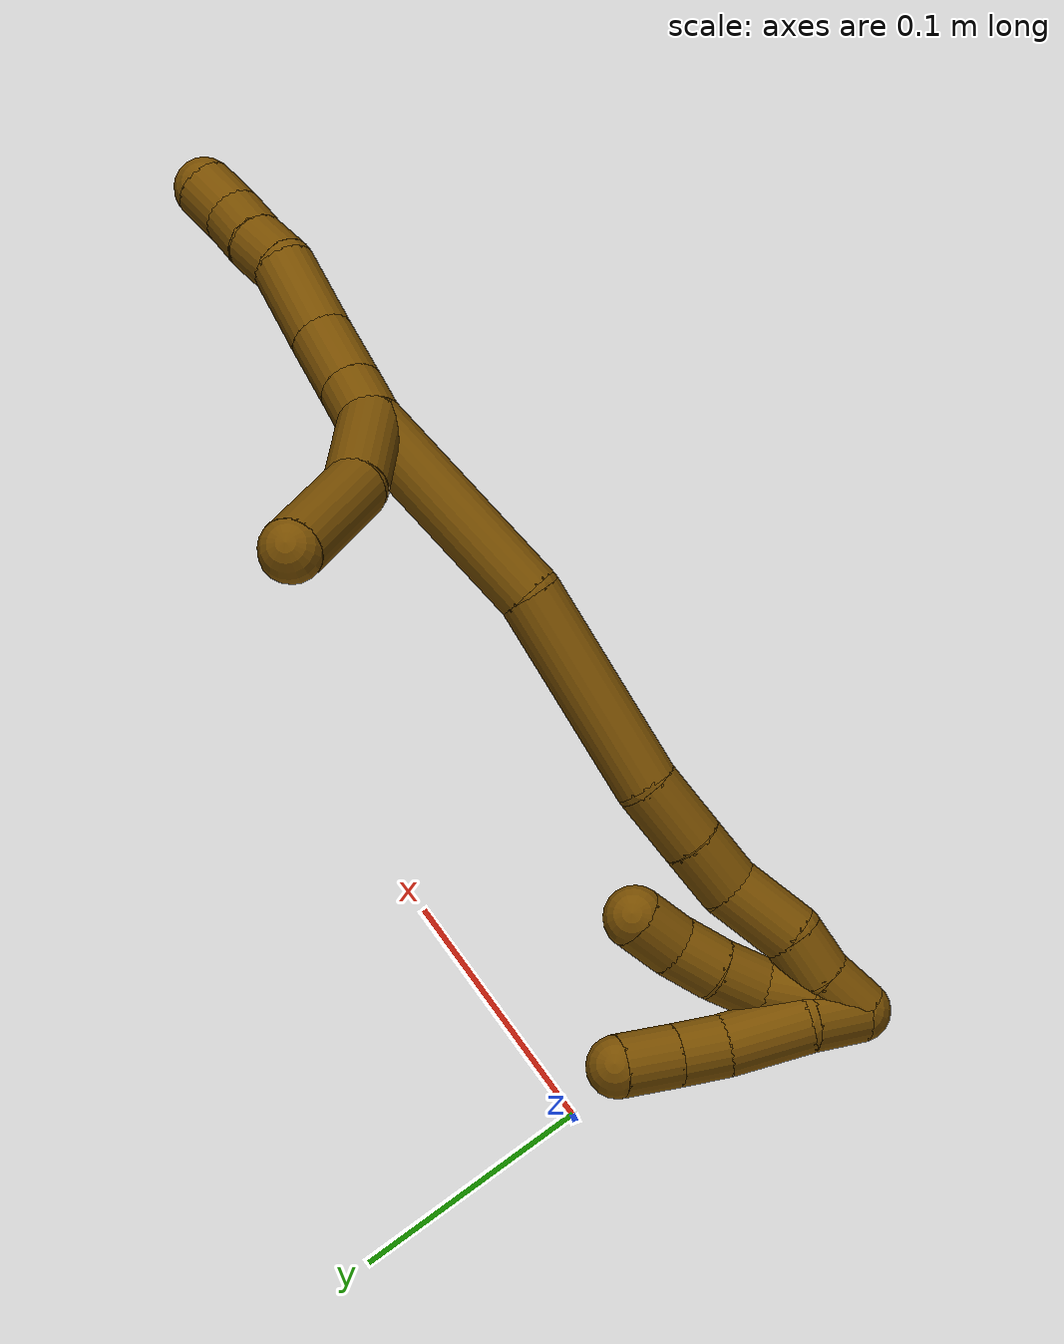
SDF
<sdf version="1.7">
 <world name="default">
  <model name="12">
   <static>0</static>
   <link name="12">
    <collision name="collision-cylinder-e_1_2_8">
     <pose>0.007874 0.004586 -0.005192 -2.41807 0.849276 -1.74787</pose>
     <geometry><cylinder><radius>0.0125</radius><length>0.020975</length></cylinder></geometry>
     <surface>
      <friction><ode><mu>1.16</mu><mu2>1.16</mu2><slip1>0</slip1><slip2>0</slip2></ode></friction>
      <contact><ode><kp>1e+06</kp><kd>1</kd><max_vel>0</max_vel><min_depth>0.001</min_depth></ode></contact>
     </surface>
    </collision>
    <visual name="visual-cylinder-e_1_2_8">
     <pose>0.007874 0.004586 -0.005192 -2.41807 0.849276 -1.74787</pose>
     <geometry><cylinder><radius>0.0125</radius><length>0.020975</length></cylinder></geometry>
     <material><ambient>0.466667 0.301961 0 1</ambient></material>
    </visual>
    <collision name="collision-cylinder-e_2_8_9">
     <pose>0.027691 0.016237 -0.016838 -2.31107 0.895294 -1.65599</pose>
     <geometry><cylinder><radius>0.0125</radius><length>0.030606</length></cylinder></geometry>
     <surface>
      <friction><ode><mu>1.16</mu><mu2>1.16</mu2><slip1>0</slip1><slip2>0</slip2></ode></friction>
      <contact><ode><kp>1e+06</kp><kd>1</kd><max_vel>0</max_vel><min_depth>0.001</min_depth></ode></contact>
     </surface>
    </collision>
    <visual name="visual-cylinder-e_2_8_9">
     <pose>0.027691 0.016237 -0.016838 -2.31107 0.895294 -1.65599</pose>
     <geometry><cylinder><radius>0.0125</radius><length>0.030606</length></cylinder></geometry>
     <material><ambient>0.466667 0.301961 0 1</ambient></material>
    </visual>
    <collision name="collision-cylinder-e_3_9_10">
     <pose>0.055375 0.032165 -0.028131 -2.0705 1.0004 -1.48868</pose>
     <geometry><cylinder><radius>0.0125</radius><length>0.037407</length></cylinder></geometry>
     <surface>
      <friction><ode><mu>1.16</mu><mu2>1.16</mu2><slip1>0</slip1><slip2>0</slip2></ode></friction>
      <contact><ode><kp>1e+06</kp><kd>1</kd><max_vel>0</max_vel><min_depth>0.001</min_depth></ode></contact>
     </surface>
    </collision>
    <visual name="visual-cylinder-e_3_9_10">
     <pose>0.055375 0.032165 -0.028131 -2.0705 1.0004 -1.48868</pose>
     <geometry><cylinder><radius>0.0125</radius><length>0.037407</length></cylinder></geometry>
     <material><ambient>0.466667 0.301961 0 1</ambient></material>
    </visual>
    <collision name="collision-cylinder-e_4_10_11">
     <pose>0.077417 0.047415 -0.037485 -2.18619 0.67812 -1.19606</pose>
     <geometry><cylinder><radius>0.0125</radius><length>0.020084</length></cylinder></geometry>
     <surface>
      <friction><ode><mu>1.16</mu><mu2>1.16</mu2><slip1>0</slip1><slip2>0</slip2></ode></friction>
      <contact><ode><kp>1e+06</kp><kd>1</kd><max_vel>0</max_vel><min_depth>0.001</min_depth></ode></contact>
     </surface>
    </collision>
    <visual name="visual-cylinder-e_4_10_11">
     <pose>0.077417 0.047415 -0.037485 -2.18619 0.67812 -1.19606</pose>
     <geometry><cylinder><radius>0.0125</radius><length>0.020084</length></cylinder></geometry>
     <material><ambient>0.466667 0.301961 0 1</ambient></material>
    </visual>
    <collision name="collision-cylinder-e_5_11_12">
     <pose>0.090626 0.059441 -0.04713 -2.30889 0.736177 -1.43442</pose>
     <geometry><cylinder><radius>0.0125</radius><length>0.020578</length></cylinder></geometry>
     <surface>
      <friction><ode><mu>1.16</mu><mu2>1.16</mu2><slip1>0</slip1><slip2>0</slip2></ode></friction>
      <contact><ode><kp>1e+06</kp><kd>1</kd><max_vel>0</max_vel><min_depth>0.001</min_depth></ode></contact>
     </surface>
    </collision>
    <visual name="visual-cylinder-e_5_11_12">
     <pose>0.090626 0.059441 -0.04713 -2.30889 0.736177 -1.43442</pose>
     <geometry><cylinder><radius>0.0125</radius><length>0.020578</length></cylinder></geometry>
     <material><ambient>0.466667 0.301961 0 1</ambient></material>
    </visual>
    <collision name="collision-cylinder-e_6_12_6">
     <pose>0.104544 0.07185 -0.055189 -1.97927 0.759997 -1.09269</pose>
     <geometry><cylinder><radius>0.0125</radius><length>0.02035</length></cylinder></geometry>
     <surface>
      <friction><ode><mu>1.16</mu><mu2>1.16</mu2><slip1>0</slip1><slip2>0</slip2></ode></friction>
      <contact><ode><kp>1e+06</kp><kd>1</kd><max_vel>0</max_vel><min_depth>0.001</min_depth></ode></contact>
     </surface>
    </collision>
    <visual name="visual-cylinder-e_6_12_6">
     <pose>0.104544 0.07185 -0.055189 -1.97927 0.759997 -1.09269</pose>
     <geometry><cylinder><radius>0.0125</radius><length>0.02035</length></cylinder></geometry>
     <material><ambient>0.466667 0.301961 0 1</ambient></material>
    </visual>
    <collision name="collision-cylinder-e_1_2_13">
     <pose>-0.016434 -0.000131 0.016392 0.007969 -0.786678 -0.003307</pose>
     <geometry><cylinder><radius>0.0125</radius><length>0.046424</length></cylinder></geometry>
     <surface>
      <friction><ode><mu>1.16</mu><mu2>1.16</mu2><slip1>0</slip1><slip2>0</slip2></ode></friction>
      <contact><ode><kp>1e+06</kp><kd>1</kd><max_vel>0</max_vel><min_depth>0.001</min_depth></ode></contact>
     </surface>
    </collision>
    <visual name="visual-cylinder-e_1_2_13">
     <pose>-0.016434 -0.000131 0.016392 0.007969 -0.786678 -0.003307</pose>
     <geometry><cylinder><radius>0.0125</radius><length>0.046424</length></cylinder></geometry>
     <material><ambient>0.466667 0.301961 0 1</ambient></material>
    </visual>
    <collision name="collision-cylinder-e_2_13_5">
     <pose>-0.048684 0.007666 0.052899 -0.375394 -0.631522 0.12394</pose>
     <geometry><cylinder><radius>0.0125</radius><length>0.053576</length></cylinder></geometry>
     <surface>
      <friction><ode><mu>1.16</mu><mu2>1.16</mu2><slip1>0</slip1><slip2>0</slip2></ode></friction>
      <contact><ode><kp>1e+06</kp><kd>1</kd><max_vel>0</max_vel><min_depth>0.001</min_depth></ode></contact>
     </surface>
    </collision>
    <visual name="visual-cylinder-e_2_13_5">
     <pose>-0.048684 0.007666 0.052899 -0.375394 -0.631522 0.12394</pose>
     <geometry><cylinder><radius>0.0125</radius><length>0.053576</length></cylinder></geometry>
     <material><ambient>0.466667 0.301961 0 1</ambient></material>
    </visual>
    <collision name="collision-cylinder-e_1_2_14">
     <pose>-0.031655 -0.02997 -0.008063 1.83361 -0.79529 -1.00255</pose>
     <geometry><cylinder><radius>0.0125</radius><length>0.088662</length></cylinder></geometry>
     <surface>
      <friction><ode><mu>1.16</mu><mu2>1.16</mu2><slip1>0</slip1><slip2>0</slip2></ode></friction>
      <contact><ode><kp>1e+06</kp><kd>1</kd><max_vel>0</max_vel><min_depth>0.001</min_depth></ode></contact>
     </surface>
    </collision>
    <visual name="visual-cylinder-e_1_2_14">
     <pose>-0.031655 -0.02997 -0.008063 1.83361 -0.79529 -1.00255</pose>
     <geometry><cylinder><radius>0.0125</radius><length>0.088662</length></cylinder></geometry>
     <material><ambient>0.466667 0.301961 0 1</ambient></material>
    </visual>
    <collision name="collision-cylinder-e_2_14_15">
     <pose>-0.097634 -0.081418 -0.029616 2.1316 -0.934384 -1.47936</pose>
     <geometry><cylinder><radius>0.0125</radius><length>0.085357</length></cylinder></geometry>
     <surface>
      <friction><ode><mu>1.16</mu><mu2>1.16</mu2><slip1>0</slip1><slip2>0</slip2></ode></friction>
      <contact><ode><kp>1e+06</kp><kd>1</kd><max_vel>0</max_vel><min_depth>0.001</min_depth></ode></contact>
     </surface>
    </collision>
    <visual name="visual-cylinder-e_2_14_15">
     <pose>-0.097634 -0.081418 -0.029616 2.1316 -0.934384 -1.47936</pose>
     <geometry><cylinder><radius>0.0125</radius><length>0.085357</length></cylinder></geometry>
     <material><ambient>0.466667 0.301961 0 1</ambient></material>
    </visual>
    <collision name="collision-cylinder-e_3_15_16">
     <pose>-0.141809 -0.111161 -0.049562 2.23398 -0.754224 -1.36405</pose>
     <geometry><cylinder><radius>0.0125</radius><length>0.028776</length></cylinder></geometry>
     <surface>
      <friction><ode><mu>1.16</mu><mu2>1.16</mu2><slip1>0</slip1><slip2>0</slip2></ode></friction>
      <contact><ode><kp>1e+06</kp><kd>1</kd><max_vel>0</max_vel><min_depth>0.001</min_depth></ode></contact>
     </surface>
    </collision>
    <visual name="visual-cylinder-e_3_15_16">
     <pose>-0.141809 -0.111161 -0.049562 2.23398 -0.754224 -1.36405</pose>
     <geometry><cylinder><radius>0.0125</radius><length>0.028776</length></cylinder></geometry>
     <material><ambient>0.466667 0.301961 0 1</ambient></material>
    </visual>
    <collision name="collision-cylinder-e_4_16_17">
     <pose>-0.159681 -0.126223 -0.061982 2.29093 -0.725447 -1.39476</pose>
     <geometry><cylinder><radius>0.0125</radius><length>0.024175</length></cylinder></geometry>
     <surface>
      <friction><ode><mu>1.16</mu><mu2>1.16</mu2><slip1>0</slip1><slip2>0</slip2></ode></friction>
      <contact><ode><kp>1e+06</kp><kd>1</kd><max_vel>0</max_vel><min_depth>0.001</min_depth></ode></contact>
     </surface>
    </collision>
    <visual name="visual-cylinder-e_4_16_17">
     <pose>-0.159681 -0.126223 -0.061982 2.29093 -0.725447 -1.39476</pose>
     <geometry><cylinder><radius>0.0125</radius><length>0.024175</length></cylinder></geometry>
     <material><ambient>0.466667 0.301961 0 1</ambient></material>
    </visual>
    <collision name="collision-cylinder-e_5_17_18">
     <pose>-0.1765 -0.144994 -0.072716 1.94987 -0.599064 -0.854739</pose>
     <geometry><cylinder><radius>0.0125</radius><length>0.031209</length></cylinder></geometry>
     <surface>
      <friction><ode><mu>1.16</mu><mu2>1.16</mu2><slip1>0</slip1><slip2>0</slip2></ode></friction>
      <contact><ode><kp>1e+06</kp><kd>1</kd><max_vel>0</max_vel><min_depth>0.001</min_depth></ode></contact>
     </surface>
    </collision>
    <visual name="visual-cylinder-e_5_17_18">
     <pose>-0.1765 -0.144994 -0.072716 1.94987 -0.599064 -0.854739</pose>
     <geometry><cylinder><radius>0.0125</radius><length>0.031209</length></cylinder></geometry>
     <material><ambient>0.466667 0.301961 0 1</ambient></material>
    </visual>
    <collision name="collision-cylinder-e_6_18_19">
     <pose>-0.192916 -0.162323 -0.081613 2.22738 -0.844725 -1.48068</pose>
     <geometry><cylinder><radius>0.0125</radius><length>0.020373</length></cylinder></geometry>
     <surface>
      <friction><ode><mu>1.16</mu><mu2>1.16</mu2><slip1>0</slip1><slip2>0</slip2></ode></friction>
      <contact><ode><kp>1e+06</kp><kd>1</kd><max_vel>0</max_vel><min_depth>0.001</min_depth></ode></contact>
     </surface>
    </collision>
    <visual name="visual-cylinder-e_6_18_19">
     <pose>-0.192916 -0.162323 -0.081613 2.22738 -0.844725 -1.48068</pose>
     <geometry><cylinder><radius>0.0125</radius><length>0.020373</length></cylinder></geometry>
     <material><ambient>0.466667 0.301961 0 1</ambient></material>
    </visual>
    <collision name="collision-cylinder-e_7_19_1">
     <pose>-0.206713 -0.175008 -0.090549 2.15137 -0.614138 -1.06198</pose>
     <geometry><cylinder><radius>0.0125</radius><length>0.021448</length></cylinder></geometry>
     <surface>
      <friction><ode><mu>1.16</mu><mu2>1.16</mu2><slip1>0</slip1><slip2>0</slip2></ode></friction>
      <contact><ode><kp>1e+06</kp><kd>1</kd><max_vel>0</max_vel><min_depth>0.001</min_depth></ode></contact>
     </surface>
    </collision>
    <visual name="visual-cylinder-e_7_19_1">
     <pose>-0.206713 -0.175008 -0.090549 2.15137 -0.614138 -1.06198</pose>
     <geometry><cylinder><radius>0.0125</radius><length>0.021448</length></cylinder></geometry>
     <material><ambient>0.466667 0.301961 0 1</ambient></material>
    </visual>
    <collision name="collision-cylinder-e_1_1_20">
     <pose>-0.210901 -0.173132 -0.091992 -1.2204 0.200444 -0.140393</pose>
     <geometry><cylinder><radius>0.0125</radius><length>0.02</length></cylinder></geometry>
     <surface>
      <friction><ode><mu>1.16</mu><mu2>1.16</mu2><slip1>0</slip1><slip2>0</slip2></ode></friction>
      <contact><ode><kp>1e+06</kp><kd>1</kd><max_vel>0</max_vel><min_depth>0.001</min_depth></ode></contact>
     </surface>
    </collision>
    <visual name="visual-cylinder-e_1_1_20">
     <pose>-0.210901 -0.173132 -0.091992 -1.2204 0.200444 -0.140393</pose>
     <geometry><cylinder><radius>0.0125</radius><length>0.02</length></cylinder></geometry>
     <material><ambient>0.466667 0.301961 0 1</ambient></material>
    </visual>
    <collision name="collision-cylinder-e_2_20_21">
     <pose>-0.207274 -0.15426 -0.086662 -1.37021 0.164329 -0.13438</pose>
     <geometry><cylinder><radius>0.0125</radius><length>0.02</length></cylinder></geometry>
     <surface>
      <friction><ode><mu>1.16</mu><mu2>1.16</mu2><slip1>0</slip1><slip2>0</slip2></ode></friction>
      <contact><ode><kp>1e+06</kp><kd>1</kd><max_vel>0</max_vel><min_depth>0.001</min_depth></ode></contact>
     </surface>
    </collision>
    <visual name="visual-cylinder-e_2_20_21">
     <pose>-0.207274 -0.15426 -0.086662 -1.37021 0.164329 -0.13438</pose>
     <geometry><cylinder><radius>0.0125</radius><length>0.02</length></cylinder></geometry>
     <material><ambient>0.466667 0.301961 0 1</ambient></material>
    </visual>
    <collision name="collision-cylinder-e_3_21_22">
     <pose>-0.202356 -0.136242 -0.080282 -1.08454 0.334415 -0.202694</pose>
     <geometry><cylinder><radius>0.0125</radius><length>0.02</length></cylinder></geometry>
     <surface>
      <friction><ode><mu>1.16</mu><mu2>1.16</mu2><slip1>0</slip1><slip2>0</slip2></ode></friction>
      <contact><ode><kp>1e+06</kp><kd>1</kd><max_vel>0</max_vel><min_depth>0.001</min_depth></ode></contact>
     </surface>
    </collision>
    <visual name="visual-cylinder-e_3_21_22">
     <pose>-0.202356 -0.136242 -0.080282 -1.08454 0.334415 -0.202694</pose>
     <geometry><cylinder><radius>0.0125</radius><length>0.02</length></cylinder></geometry>
     <material><ambient>0.466667 0.301961 0 1</ambient></material>
    </visual>
    <collision name="collision-cylinder-e_4_22_23">
     <pose>-0.194804 -0.119778 -0.071875 -1.11341 0.441186 -0.277332</pose>
     <geometry><cylinder><radius>0.0125</radius><length>0.02</length></cylinder></geometry>
     <surface>
      <friction><ode><mu>1.16</mu><mu2>1.16</mu2><slip1>0</slip1><slip2>0</slip2></ode></friction>
      <contact><ode><kp>1e+06</kp><kd>1</kd><max_vel>0</max_vel><min_depth>0.001</min_depth></ode></contact>
     </surface>
    </collision>
    <visual name="visual-cylinder-e_4_22_23">
     <pose>-0.194804 -0.119778 -0.071875 -1.11341 0.441186 -0.277332</pose>
     <geometry><cylinder><radius>0.0125</radius><length>0.02</length></cylinder></geometry>
     <material><ambient>0.466667 0.301961 0 1</ambient></material>
    </visual>
    <collision name="collision-cylinder-e_5_23_4">
     <pose>-0.185896 -0.104813 -0.062265 -0.884166 0.482256 -0.231752</pose>
     <geometry><cylinder><radius>0.0125</radius><length>0.02</length></cylinder></geometry>
     <surface>
      <friction><ode><mu>1.16</mu><mu2>1.16</mu2><slip1>0</slip1><slip2>0</slip2></ode></friction>
      <contact><ode><kp>1e+06</kp><kd>1</kd><max_vel>0</max_vel><min_depth>0.001</min_depth></ode></contact>
     </surface>
    </collision>
    <visual name="visual-cylinder-e_5_23_4">
     <pose>-0.185896 -0.104813 -0.062265 -0.884166 0.482256 -0.231752</pose>
     <geometry><cylinder><radius>0.0125</radius><length>0.02</length></cylinder></geometry>
     <material><ambient>0.466667 0.301961 0 1</ambient></material>
    </visual>
    <collision name="collision-cylinder-e_1_1_24">
     <pose>-0.215498 -0.172508 -0.090432 -1.10639 -0.232736 0.144119</pose>
     <geometry><cylinder><radius>0.0125</radius><length>0.022595</length></cylinder></geometry>
     <surface>
      <friction><ode><mu>1.16</mu><mu2>1.16</mu2><slip1>0</slip1><slip2>0</slip2></ode></friction>
      <contact><ode><kp>1e+06</kp><kd>1</kd><max_vel>0</max_vel><min_depth>0.001</min_depth></ode></contact>
     </surface>
    </collision>
    <visual name="visual-cylinder-e_1_1_24">
     <pose>-0.215498 -0.172508 -0.090432 -1.10639 -0.232736 0.144119</pose>
     <geometry><cylinder><radius>0.0125</radius><length>0.022595</length></cylinder></geometry>
     <material><ambient>0.466667 0.301961 0 1</ambient></material>
    </visual>
    <collision name="collision-cylinder-e_2_24_25">
     <pose>-0.223184 -0.146795 -0.082574 -1.38812 -0.304696 0.254165</pose>
     <geometry><cylinder><radius>0.0125</radius><length>0.033866</length></cylinder></geometry>
     <surface>
      <friction><ode><mu>1.16</mu><mu2>1.16</mu2><slip1>0</slip1><slip2>0</slip2></ode></friction>
      <contact><ode><kp>1e+06</kp><kd>1</kd><max_vel>0</max_vel><min_depth>0.001</min_depth></ode></contact>
     </surface>
    </collision>
    <visual name="visual-cylinder-e_2_24_25">
     <pose>-0.223184 -0.146795 -0.082574 -1.38812 -0.304696 0.254165</pose>
     <geometry><cylinder><radius>0.0125</radius><length>0.033866</length></cylinder></geometry>
     <material><ambient>0.466667 0.301961 0 1</ambient></material>
    </visual>
    <collision name="collision-cylinder-e_3_25_26">
     <pose>-0.230506 -0.12169 -0.076333 -1.22642 -0.22505 0.158706</pose>
     <geometry><cylinder><radius>0.0125</radius><length>0.020097</length></cylinder></geometry>
     <surface>
      <friction><ode><mu>1.16</mu><mu2>1.16</mu2><slip1>0</slip1><slip2>0</slip2></ode></friction>
      <contact><ode><kp>1e+06</kp><kd>1</kd><max_vel>0</max_vel><min_depth>0.001</min_depth></ode></contact>
     </surface>
    </collision>
    <visual name="visual-cylinder-e_3_25_26">
     <pose>-0.230506 -0.12169 -0.076333 -1.22642 -0.22505 0.158706</pose>
     <geometry><cylinder><radius>0.0125</radius><length>0.020097</length></cylinder></geometry>
     <material><ambient>0.466667 0.301961 0 1</ambient></material>
    </visual>
    <collision name="collision-cylinder-e_4_26_3">
     <pose>-0.235226 -0.102002 -0.068374 -1.15264 -0.212955 0.138706</pose>
     <geometry><cylinder><radius>0.0125</radius><length>0.023442</length></cylinder></geometry>
     <surface>
      <friction><ode><mu>1.16</mu><mu2>1.16</mu2><slip1>0</slip1><slip2>0</slip2></ode></friction>
      <contact><ode><kp>1e+06</kp><kd>1</kd><max_vel>0</max_vel><min_depth>0.001</min_depth></ode></contact>
     </surface>
    </collision>
    <visual name="visual-cylinder-e_4_26_3">
     <pose>-0.235226 -0.102002 -0.068374 -1.15264 -0.212955 0.138706</pose>
     <geometry><cylinder><radius>0.0125</radius><length>0.023442</length></cylinder></geometry>
     <material><ambient>0.466667 0.301961 0 1</ambient></material>
    </visual>
    <collision name="collision-sphere-3">
     <pose>-0.237703 -0.091533 -0.063721 0 -0 0</pose>
     <geometry><sphere><radius>0.0125</radius></sphere></geometry>
     <surface>
      <friction><ode><mu>1.16</mu><mu2>1.16</mu2><slip1>0</slip1><slip2>0</slip2></ode></friction>
      <contact><ode><kp>1e+06</kp><kd>1</kd><max_vel>0</max_vel><min_depth>0.001</min_depth></ode></contact>
     </surface>
    </collision>
    <visual name="visual-sphere-3">
     <pose>-0.237703 -0.091533 -0.063721 0 -0 0</pose>
     <geometry><sphere><radius>0.0125</radius></sphere></geometry>
     <material><ambient>0.466667 0.301961 0 1</ambient></material>
    </visual>
    <collision name="collision-sphere-26">
     <pose>-0.232749 -0.112471 -0.073026 0 -0 0</pose>
     <geometry><sphere><radius>0.0125</radius></sphere></geometry>
     <surface>
      <friction><ode><mu>1.16</mu><mu2>1.16</mu2><slip1>0</slip1><slip2>0</slip2></ode></friction>
      <contact><ode><kp>1e+06</kp><kd>1</kd><max_vel>0</max_vel><min_depth>0.001</min_depth></ode></contact>
     </surface>
    </collision>
    <visual name="visual-sphere-26">
     <pose>-0.232749 -0.112471 -0.073026 0 -0 0</pose>
     <geometry><sphere><radius>0.0125</radius></sphere></geometry>
     <material><ambient>0.466667 0.301961 0 1</ambient></material>
    </visual>
    <collision name="collision-sphere-25">
     <pose>-0.228264 -0.13091 -0.079639 0 -0 0</pose>
     <geometry><sphere><radius>0.0125</radius></sphere></geometry>
     <surface>
      <friction><ode><mu>1.16</mu><mu2>1.16</mu2><slip1>0</slip1><slip2>0</slip2></ode></friction>
      <contact><ode><kp>1e+06</kp><kd>1</kd><max_vel>0</max_vel><min_depth>0.001</min_depth></ode></contact>
     </surface>
    </collision>
    <visual name="visual-sphere-25">
     <pose>-0.228264 -0.13091 -0.079639 0 -0 0</pose>
     <geometry><sphere><radius>0.0125</radius></sphere></geometry>
     <material><ambient>0.466667 0.301961 0 1</ambient></material>
    </visual>
    <collision name="collision-sphere-24">
     <pose>-0.218104 -0.162679 -0.085508 0 -0 0</pose>
     <geometry><sphere><radius>0.0125</radius></sphere></geometry>
     <surface>
      <friction><ode><mu>1.16</mu><mu2>1.16</mu2><slip1>0</slip1><slip2>0</slip2></ode></friction>
      <contact><ode><kp>1e+06</kp><kd>1</kd><max_vel>0</max_vel><min_depth>0.001</min_depth></ode></contact>
     </surface>
    </collision>
    <visual name="visual-sphere-24">
     <pose>-0.218104 -0.162679 -0.085508 0 -0 0</pose>
     <geometry><sphere><radius>0.0125</radius></sphere></geometry>
     <material><ambient>0.466667 0.301961 0 1</ambient></material>
    </visual>
    <collision name="collision-sphere-4">
     <pose>-0.181258 -0.097961 -0.056649 0 -0 0</pose>
     <geometry><sphere><radius>0.0125</radius></sphere></geometry>
     <surface>
      <friction><ode><mu>1.16</mu><mu2>1.16</mu2><slip1>0</slip1><slip2>0</slip2></ode></friction>
      <contact><ode><kp>1e+06</kp><kd>1</kd><max_vel>0</max_vel><min_depth>0.001</min_depth></ode></contact>
     </surface>
    </collision>
    <visual name="visual-sphere-4">
     <pose>-0.181258 -0.097961 -0.056649 0 -0 0</pose>
     <geometry><sphere><radius>0.0125</radius></sphere></geometry>
     <material><ambient>0.466667 0.301961 0 1</ambient></material>
    </visual>
    <collision name="collision-sphere-23">
     <pose>-0.190534 -0.111665 -0.067882 0 -0 0</pose>
     <geometry><sphere><radius>0.0125</radius></sphere></geometry>
     <surface>
      <friction><ode><mu>1.16</mu><mu2>1.16</mu2><slip1>0</slip1><slip2>0</slip2></ode></friction>
      <contact><ode><kp>1e+06</kp><kd>1</kd><max_vel>0</max_vel><min_depth>0.001</min_depth></ode></contact>
     </surface>
    </collision>
    <visual name="visual-sphere-23">
     <pose>-0.190534 -0.111665 -0.067882 0 -0 0</pose>
     <geometry><sphere><radius>0.0125</radius></sphere></geometry>
     <material><ambient>0.466667 0.301961 0 1</ambient></material>
    </visual>
    <collision name="collision-sphere-22">
     <pose>-0.199074 -0.127891 -0.075868 0 -0 0</pose>
     <geometry><sphere><radius>0.0125</radius></sphere></geometry>
     <surface>
      <friction><ode><mu>1.16</mu><mu2>1.16</mu2><slip1>0</slip1><slip2>0</slip2></ode></friction>
      <contact><ode><kp>1e+06</kp><kd>1</kd><max_vel>0</max_vel><min_depth>0.001</min_depth></ode></contact>
     </surface>
    </collision>
    <visual name="visual-sphere-22">
     <pose>-0.199074 -0.127891 -0.075868 0 -0 0</pose>
     <geometry><sphere><radius>0.0125</radius></sphere></geometry>
     <material><ambient>0.466667 0.301961 0 1</ambient></material>
    </visual>
    <collision name="collision-sphere-21">
     <pose>-0.205639 -0.144593 -0.084697 0 -0 0</pose>
     <geometry><sphere><radius>0.0125</radius></sphere></geometry>
     <surface>
      <friction><ode><mu>1.16</mu><mu2>1.16</mu2><slip1>0</slip1><slip2>0</slip2></ode></friction>
      <contact><ode><kp>1e+06</kp><kd>1</kd><max_vel>0</max_vel><min_depth>0.001</min_depth></ode></contact>
     </surface>
    </collision>
    <visual name="visual-sphere-21">
     <pose>-0.205639 -0.144593 -0.084697 0 -0 0</pose>
     <geometry><sphere><radius>0.0125</radius></sphere></geometry>
     <material><ambient>0.466667 0.301961 0 1</ambient></material>
    </visual>
    <collision name="collision-sphere-20">
     <pose>-0.20891 -0.163928 -0.088628 0 -0 0</pose>
     <geometry><sphere><radius>0.0125</radius></sphere></geometry>
     <surface>
      <friction><ode><mu>1.16</mu><mu2>1.16</mu2><slip1>0</slip1><slip2>0</slip2></ode></friction>
      <contact><ode><kp>1e+06</kp><kd>1</kd><max_vel>0</max_vel><min_depth>0.001</min_depth></ode></contact>
     </surface>
    </collision>
    <visual name="visual-sphere-20">
     <pose>-0.20891 -0.163928 -0.088628 0 -0 0</pose>
     <geometry><sphere><radius>0.0125</radius></sphere></geometry>
     <material><ambient>0.466667 0.301961 0 1</ambient></material>
    </visual>
    <collision name="collision-sphere-12">
     <pose>0.097534 0.065082 -0.05226 0 -0 0</pose>
     <geometry><sphere><radius>0.0125</radius></sphere></geometry>
     <surface>
      <friction><ode><mu>1.16</mu><mu2>1.16</mu2><slip1>0</slip1><slip2>0</slip2></ode></friction>
      <contact><ode><kp>1e+06</kp><kd>1</kd><max_vel>0</max_vel><min_depth>0.001</min_depth></ode></contact>
     </surface>
    </collision>
    <visual name="visual-sphere-12">
     <pose>0.097534 0.065082 -0.05226 0 -0 0</pose>
     <geometry><sphere><radius>0.0125</radius></sphere></geometry>
     <material><ambient>0.466667 0.301961 0 1</ambient></material>
    </visual>
    <collision name="collision-sphere-11">
     <pose>0.083717 0.053801 -0.041999 0 -0 0</pose>
     <geometry><sphere><radius>0.0125</radius></sphere></geometry>
     <surface>
      <friction><ode><mu>1.16</mu><mu2>1.16</mu2><slip1>0</slip1><slip2>0</slip2></ode></friction>
      <contact><ode><kp>1e+06</kp><kd>1</kd><max_vel>0</max_vel><min_depth>0.001</min_depth></ode></contact>
     </surface>
    </collision>
    <visual name="visual-sphere-11">
     <pose>0.083717 0.053801 -0.041999 0 -0 0</pose>
     <geometry><sphere><radius>0.0125</radius></sphere></geometry>
     <material><ambient>0.466667 0.301961 0 1</ambient></material>
    </visual>
    <collision name="collision-sphere-10">
     <pose>0.071117 0.04103 -0.03297 0 -0 0</pose>
     <geometry><sphere><radius>0.0125</radius></sphere></geometry>
     <surface>
      <friction><ode><mu>1.16</mu><mu2>1.16</mu2><slip1>0</slip1><slip2>0</slip2></ode></friction>
      <contact><ode><kp>1e+06</kp><kd>1</kd><max_vel>0</max_vel><min_depth>0.001</min_depth></ode></contact>
     </surface>
    </collision>
    <visual name="visual-sphere-10">
     <pose>0.071117 0.04103 -0.03297 0 -0 0</pose>
     <geometry><sphere><radius>0.0125</radius></sphere></geometry>
     <material><ambient>0.466667 0.301961 0 1</ambient></material>
    </visual>
    <collision name="collision-sphere-9">
     <pose>0.039633 0.023301 -0.023292 0 -0 0</pose>
     <geometry><sphere><radius>0.0125</radius></sphere></geometry>
     <surface>
      <friction><ode><mu>1.16</mu><mu2>1.16</mu2><slip1>0</slip1><slip2>0</slip2></ode></friction>
      <contact><ode><kp>1e+06</kp><kd>1</kd><max_vel>0</max_vel><min_depth>0.001</min_depth></ode></contact>
     </surface>
    </collision>
    <visual name="visual-sphere-9">
     <pose>0.039633 0.023301 -0.023292 0 -0 0</pose>
     <geometry><sphere><radius>0.0125</radius></sphere></geometry>
     <material><ambient>0.466667 0.301961 0 1</ambient></material>
    </visual>
    <collision name="collision-sphere-2">
     <geometry><sphere><radius>0.0125</radius></sphere></geometry>
     <surface>
      <friction><ode><mu>1.16</mu><mu2>1.16</mu2><slip1>0</slip1><slip2>0</slip2></ode></friction>
      <contact><ode><kp>1e+06</kp><kd>1</kd><max_vel>0</max_vel><min_depth>0.001</min_depth></ode></contact>
     </surface>
    </collision>
    <visual name="visual-sphere-2">
     <geometry><sphere><radius>0.0125</radius></sphere></geometry>
     <material><ambient>0.466667 0.301961 0 1</ambient></material>
    </visual>
    <collision name="collision-sphere-19">
     <pose>-0.200533 -0.16768 -0.085741 0 -0 0</pose>
     <geometry><sphere><radius>0.0125</radius></sphere></geometry>
     <surface>
      <friction><ode><mu>1.16</mu><mu2>1.16</mu2><slip1>0</slip1><slip2>0</slip2></ode></friction>
      <contact><ode><kp>1e+06</kp><kd>1</kd><max_vel>0</max_vel><min_depth>0.001</min_depth></ode></contact>
     </surface>
    </collision>
    <visual name="visual-sphere-19">
     <pose>-0.200533 -0.16768 -0.085741 0 -0 0</pose>
     <geometry><sphere><radius>0.0125</radius></sphere></geometry>
     <material><ambient>0.466667 0.301961 0 1</ambient></material>
    </visual>
    <collision name="collision-sphere-8">
     <pose>0.015748 0.009172 -0.010384 0 -0 0</pose>
     <geometry><sphere><radius>0.0125</radius></sphere></geometry>
     <surface>
      <friction><ode><mu>1.16</mu><mu2>1.16</mu2><slip1>0</slip1><slip2>0</slip2></ode></friction>
      <contact><ode><kp>1e+06</kp><kd>1</kd><max_vel>0</max_vel><min_depth>0.001</min_depth></ode></contact>
     </surface>
    </collision>
    <visual name="visual-sphere-8">
     <pose>0.015748 0.009172 -0.010384 0 -0 0</pose>
     <geometry><sphere><radius>0.0125</radius></sphere></geometry>
     <material><ambient>0.466667 0.301961 0 1</ambient></material>
    </visual>
    <collision name="collision-sphere-6">
     <pose>0.111554 0.078619 -0.058119 0 -0 0</pose>
     <geometry><sphere><radius>0.0125</radius></sphere></geometry>
     <surface>
      <friction><ode><mu>1.16</mu><mu2>1.16</mu2><slip1>0</slip1><slip2>0</slip2></ode></friction>
      <contact><ode><kp>1e+06</kp><kd>1</kd><max_vel>0</max_vel><min_depth>0.001</min_depth></ode></contact>
     </surface>
    </collision>
    <visual name="visual-sphere-6">
     <pose>0.111554 0.078619 -0.058119 0 -0 0</pose>
     <geometry><sphere><radius>0.0125</radius></sphere></geometry>
     <material><ambient>0.466667 0.301961 0 1</ambient></material>
    </visual>
    <collision name="collision-sphere-13">
     <pose>-0.032869 -0.000261 0.032783 0 -0 0</pose>
     <geometry><sphere><radius>0.0125</radius></sphere></geometry>
     <surface>
      <friction><ode><mu>1.16</mu><mu2>1.16</mu2><slip1>0</slip1><slip2>0</slip2></ode></friction>
      <contact><ode><kp>1e+06</kp><kd>1</kd><max_vel>0</max_vel><min_depth>0.001</min_depth></ode></contact>
     </surface>
    </collision>
    <visual name="visual-sphere-13">
     <pose>-0.032869 -0.000261 0.032783 0 -0 0</pose>
     <geometry><sphere><radius>0.0125</radius></sphere></geometry>
     <material><ambient>0.466667 0.301961 0 1</ambient></material>
    </visual>
    <collision name="collision-sphere-5">
     <pose>-0.064499 0.015593 0.073015 0 -0 0</pose>
     <geometry><sphere><radius>0.0125</radius></sphere></geometry>
     <surface>
      <friction><ode><mu>1.16</mu><mu2>1.16</mu2><slip1>0</slip1><slip2>0</slip2></ode></friction>
      <contact><ode><kp>1e+06</kp><kd>1</kd><max_vel>0</max_vel><min_depth>0.001</min_depth></ode></contact>
     </surface>
    </collision>
    <visual name="visual-sphere-5">
     <pose>-0.064499 0.015593 0.073015 0 -0 0</pose>
     <geometry><sphere><radius>0.0125</radius></sphere></geometry>
     <material><ambient>0.466667 0.301961 0 1</ambient></material>
    </visual>
    <collision name="collision-sphere-14">
     <pose>-0.063311 -0.059939 -0.016126 0 -0 0</pose>
     <geometry><sphere><radius>0.0125</radius></sphere></geometry>
     <surface>
      <friction><ode><mu>1.16</mu><mu2>1.16</mu2><slip1>0</slip1><slip2>0</slip2></ode></friction>
      <contact><ode><kp>1e+06</kp><kd>1</kd><max_vel>0</max_vel><min_depth>0.001</min_depth></ode></contact>
     </surface>
    </collision>
    <visual name="visual-sphere-14">
     <pose>-0.063311 -0.059939 -0.016126 0 -0 0</pose>
     <geometry><sphere><radius>0.0125</radius></sphere></geometry>
     <material><ambient>0.466667 0.301961 0 1</ambient></material>
    </visual>
    <collision name="collision-sphere-15">
     <pose>-0.131957 -0.102897 -0.043107 0 -0 0</pose>
     <geometry><sphere><radius>0.0125</radius></sphere></geometry>
     <surface>
      <friction><ode><mu>1.16</mu><mu2>1.16</mu2><slip1>0</slip1><slip2>0</slip2></ode></friction>
      <contact><ode><kp>1e+06</kp><kd>1</kd><max_vel>0</max_vel><min_depth>0.001</min_depth></ode></contact>
     </surface>
    </collision>
    <visual name="visual-sphere-15">
     <pose>-0.131957 -0.102897 -0.043107 0 -0 0</pose>
     <geometry><sphere><radius>0.0125</radius></sphere></geometry>
     <material><ambient>0.466667 0.301961 0 1</ambient></material>
    </visual>
    <collision name="collision-sphere-16">
     <pose>-0.151661 -0.119424 -0.056018 0 -0 0</pose>
     <geometry><sphere><radius>0.0125</radius></sphere></geometry>
     <surface>
      <friction><ode><mu>1.16</mu><mu2>1.16</mu2><slip1>0</slip1><slip2>0</slip2></ode></friction>
      <contact><ode><kp>1e+06</kp><kd>1</kd><max_vel>0</max_vel><min_depth>0.001</min_depth></ode></contact>
     </surface>
    </collision>
    <visual name="visual-sphere-16">
     <pose>-0.151661 -0.119424 -0.056018 0 -0 0</pose>
     <geometry><sphere><radius>0.0125</radius></sphere></geometry>
     <material><ambient>0.466667 0.301961 0 1</ambient></material>
    </visual>
    <collision name="collision-sphere-17">
     <pose>-0.167701 -0.133021 -0.067947 0 -0 0</pose>
     <geometry><sphere><radius>0.0125</radius></sphere></geometry>
     <surface>
      <friction><ode><mu>1.16</mu><mu2>1.16</mu2><slip1>0</slip1><slip2>0</slip2></ode></friction>
      <contact><ode><kp>1e+06</kp><kd>1</kd><max_vel>0</max_vel><min_depth>0.001</min_depth></ode></contact>
     </surface>
    </collision>
    <visual name="visual-sphere-17">
     <pose>-0.167701 -0.133021 -0.067947 0 -0 0</pose>
     <geometry><sphere><radius>0.0125</radius></sphere></geometry>
     <material><ambient>0.466667 0.301961 0 1</ambient></material>
    </visual>
    <collision name="collision-sphere-18">
     <pose>-0.185298 -0.156966 -0.077485 0 -0 0</pose>
     <geometry><sphere><radius>0.0125</radius></sphere></geometry>
     <surface>
      <friction><ode><mu>1.16</mu><mu2>1.16</mu2><slip1>0</slip1><slip2>0</slip2></ode></friction>
      <contact><ode><kp>1e+06</kp><kd>1</kd><max_vel>0</max_vel><min_depth>0.001</min_depth></ode></contact>
     </surface>
    </collision>
    <visual name="visual-sphere-18">
     <pose>-0.185298 -0.156966 -0.077485 0 -0 0</pose>
     <geometry><sphere><radius>0.0125</radius></sphere></geometry>
     <material><ambient>0.466667 0.301961 0 1</ambient></material>
    </visual>
    <collision name="collision-sphere-1">
     <pose>-0.212892 -0.182337 -0.095356 0 -0 0</pose>
     <geometry><sphere><radius>0.0125</radius></sphere></geometry>
     <surface>
      <friction><ode><mu>1.16</mu><mu2>1.16</mu2><slip1>0</slip1><slip2>0</slip2></ode></friction>
      <contact><ode><kp>1e+06</kp><kd>1</kd><max_vel>0</max_vel><min_depth>0.001</min_depth></ode></contact>
     </surface>
    </collision>
    <visual name="visual-sphere-1">
     <pose>-0.212892 -0.182337 -0.095356 0 -0 0</pose>
     <geometry><sphere><radius>0.0125</radius></sphere></geometry>
     <material><ambient>0.466667 0.301961 0 1</ambient></material>
    </visual>
    <inertial>
     <pose>-0.093723 -0.065433 -0.038409 0 -0 0</pose>
     <mass>0.75</mass>
     <inertia>
      <ixx>-3.1e-05</ixx>
      <ixy>0</ixy>
      <ixz>0</ixz>
      <iyy>2.8e-05</iyy>
      <iyz>0</iyz>
      <izz>0.000149</izz>
     </inertia>
    </inertial>
   </link>
   <pose>0.257789 -0.092424 0.096763 -0.113245 0.083936 -0.646825</pose>
  </model>
 </world>
</sdf>
